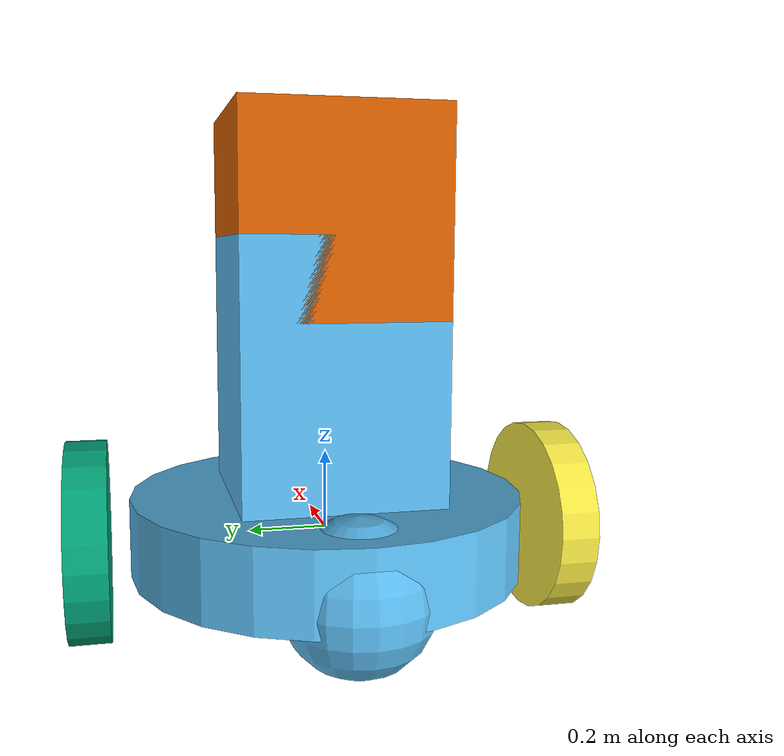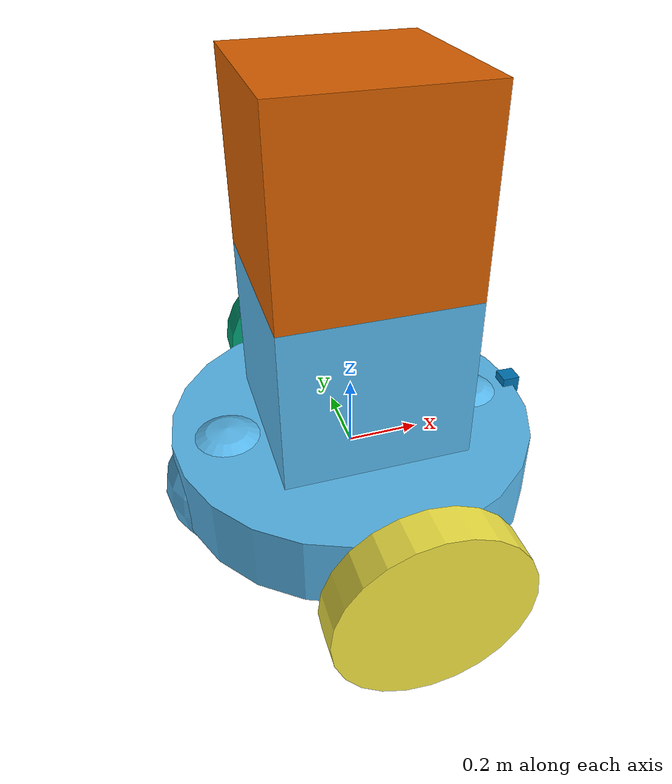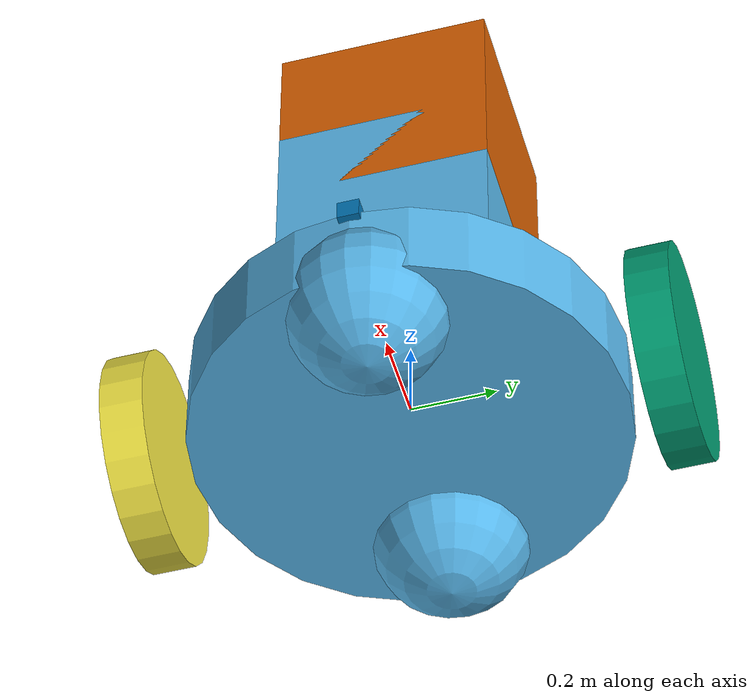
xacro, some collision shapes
<?xml version='1.0'?>

<robot name="my_robot" xmlns:xacro="http://www.ros.org/wiki/xacro">
  <xacro:include filename="$(find my_robot)/urdf/my_robot.gazebo" />

  <link name="robot_footprint"></link>
  <joint name="robot_footprint_joint" type="fixed">
    <origin xyz="0 0 0" rpy="0 0 0" />
    <parent link="robot_footprint"/>
    <child link="chassis" />
  </joint>

  <link name='chassis'>
    <pose>0 0 0 0 0 0</pose>

    <inertial>
      <mass value="20.0"/>
      <origin xyz="0 0 0" rpy=" 0 0 0"/>
      <inertia
          ixx="0.5" ixy="0" ixz="0"
          iyy="0.5" iyz="0"
          izz="0.5"
      />
    </inertial>

    <collision name='collision'>
      <origin xyz="0 0 0" rpy=" 0 0 0"/>
      <geometry>
        <cylinder radius=".5" length=".2"/>
      </geometry>
    </collision>

    <visual name='chassis_visual'>
      <origin xyz="0 0 0" rpy=" 0 0 0"/>
      <geometry>
        <cylinder radius=".5" length=".2"/>
      </geometry>
    </visual>

    <collision name='body_tower'>
      <origin xyz="0 0 0.35" rpy=" 0 0 0"/>
      <geometry>
        <box size="0.5 0.5 0.8"/>
      </geometry>
    </collision>

    <visual name='body_tower'>
      <origin xyz="0 0 0.35" rpy=" 0 0 0"/>
      <geometry>
        <box size="0.5 0.5 0.8"/>
      </geometry>
    </visual>

    <collision name='back_caster_collision'>
      <origin xyz="0.35 0 -0.06" rpy=" 0 0 0"/>
      <geometry>
        <sphere radius="0.184"/>
      </geometry>
    </collision>

    <visual name='back_caster_visual'>
      <origin xyz="0.35 0 -0.06" rpy=" 0 0 0"/>
      <geometry>
        <sphere radius="0.185"/>
      </geometry>
    </visual>

    <collision name='front_caster_collision'>
      <origin xyz="-0.35 0 -0.06" rpy=" 0 0 0"/>
      <geometry>
        <sphere radius="0.184"/>
      </geometry>
    </collision>

    <visual name='front_caster_visual'>
      <origin xyz="-0.35 0 -0.06" rpy=" 0 0 0"/>
      <geometry>
        <sphere radius="0.185"/>
      </geometry>
    </visual>

  </link>
  <link name="left_wheel">
    <inertial>
      <mass value="5.0"/>
      <origin xyz="0 0 0" rpy=" 0 1.5707 1.5707"/>
      <inertia
          ixx="0.1" ixy="0" ixz="0"
          iyy="0.1" iyz="0"
          izz="0.1"
      />
    </inertial>

    <collision>
      <origin xyz="0 0 0" rpy=" 0 1.5707 1.5707"/>
      <geometry>
        <cylinder radius=".25" length=".1"/>
      </geometry>
    </collision>

    <visual>
      <origin xyz="0 0 0" rpy=" 0 1.5707 1.5707"/>
      <geometry>
        <cylinder radius=".25" length=".1"/>
      </geometry>
    </visual>
  </link>

  <link name="right_wheel">
    <inertial>
      <mass value="5.0"/>
      <origin xyz="0 0 0" rpy=" 0 1.5707 1.5707"/>
      <inertia
          ixx="0.1" ixy="0" ixz="0"
          iyy="0.1" iyz="0"
          izz="0.1"
      />
    </inertial>

    <collision>
      <origin xyz="0 0 0" rpy=" 0 1.5707 1.5707"/>
      <geometry>
        <cylinder radius=".25" length=".1"/>
      </geometry>
    </collision>

    <visual>
      <origin xyz="0 0 0" rpy=" 0 1.5707 1.5707"/>
      <geometry>
        <cylinder radius=".25" length=".1"/>
      </geometry>
    </visual>
  </link>

  <xacro:macro name="box_inertia" params="m w h d">
    <inertial>
      <mass value="${m}"/>
      <inertia ixx="1e-6" ixy="0" ixz="0" iyy="1e-6" iyz="0" izz="1e-6"/>
    </inertial>
  </xacro:macro>

  <link name="camera">
    <xacro:box_inertia m="0.1" w="0.05" h="0.05" d="0.05"/>
    <inertial>

      <origin xyz="0 0 0" rpy=" 0 0 0"/>

    </inertial>

    <collision>
      <origin xyz="0 0 0" rpy=" 0 0 0"/>
      <geometry>
        <box size="0.05 0.05 0.05"/>
      </geometry>
    </collision>

    <visual>
      <origin xyz="0 0 0" rpy=" 0 0 0"/>
      <geometry>
        <box size="0.05 0.05 0.05"/>
      </geometry>
    </visual>
  </link>

  <link name="hokuyo">
    <inertial>
      <mass value="1e-5"/>
      <origin xyz="0 0 0" rpy=" 0 0 0"/>
      <inertia
          ixx="1e-6" ixy="0" ixz="0"
          iyy="1e-6" iyz="0"
          izz="1e-6"
      />
    </inertial>

    <collision>
      <origin xyz="0 0 0" rpy=" 0 0 0"/>
      <geometry>
        <box size="0.5 0.5 0.5"/>
      </geometry>
    </collision>

     <visual>
      <origin xyz="0 0 0" rpy=" 0 0 0"/>
      <geometry>
        <mesh filename="file:///home/workspace/EllaCM/catkin_ws/src/UdacityProject2ROS/my_robot/meshes/hokuyo.dae"/>
      </geometry>
     </visual>
  </link>

    <joint type="continuous" name="left_wheel_hinge">
        <origin xyz="0 0.6 0.0" rpy="0 0 0"/>
        <child link="left_wheel"/>
        <parent link="chassis"/>
        <axis xyz="0 1 0" rpy="0 0 0"/>
        <limit effort="10000" velocity="1000"/>
        <dynamics damping="1.0" friction="1.0"/>
    </joint>

    <joint type="continuous" name="right_wheel_hinge">
        <origin xyz="0 -0.6 0.0" rpy="0 0 0"/>
        <child link="right_wheel"/>
        <parent link="chassis"/>
        <axis xyz="0 1 0" rpy="0 0 0"/>
        <limit effort="10000" velocity="1000"/>
        <dynamics damping="1.0" friction="1.0"/>
    </joint>

    <joint type="fixed" name="camera_joint">
        <origin xyz="0.49 0 0.1" rpy="0 0 0"/>
        <child link="camera"/>
        <parent link="chassis"/>
        <axis xyz="0 1 0" rpy="0 0 0"/>

    </joint>

    <joint type="fixed" name="hokuyo_joint">
        <origin xyz="0 0 0.8" rpy="0 0 0"/>
        <child link="hokuyo"/>
        <parent link="chassis"/>
        <axis xyz="0 1 0" rpy="0 0 0"/>

    </joint>

</robot>
